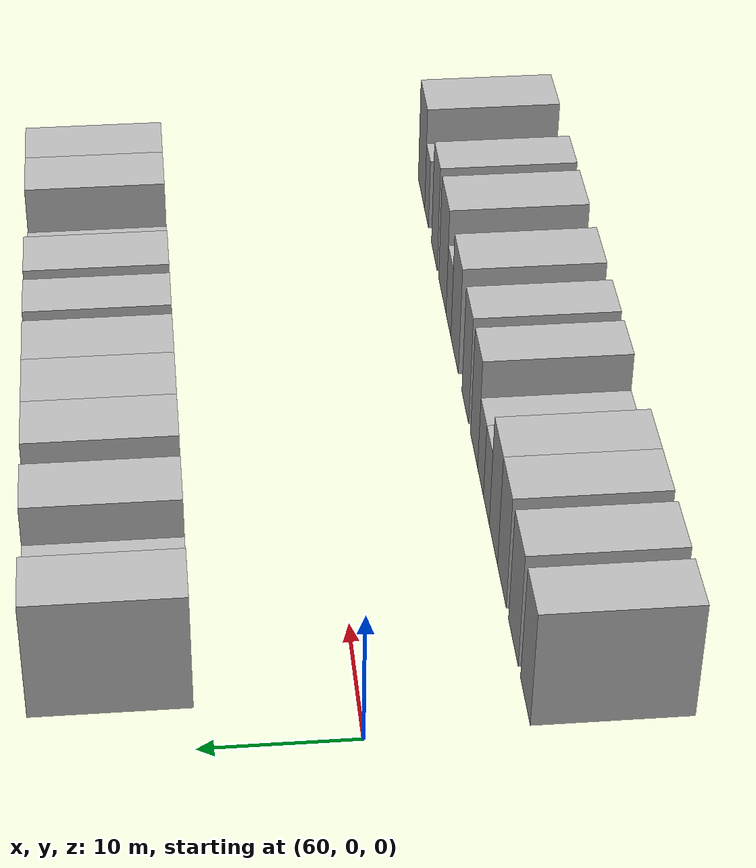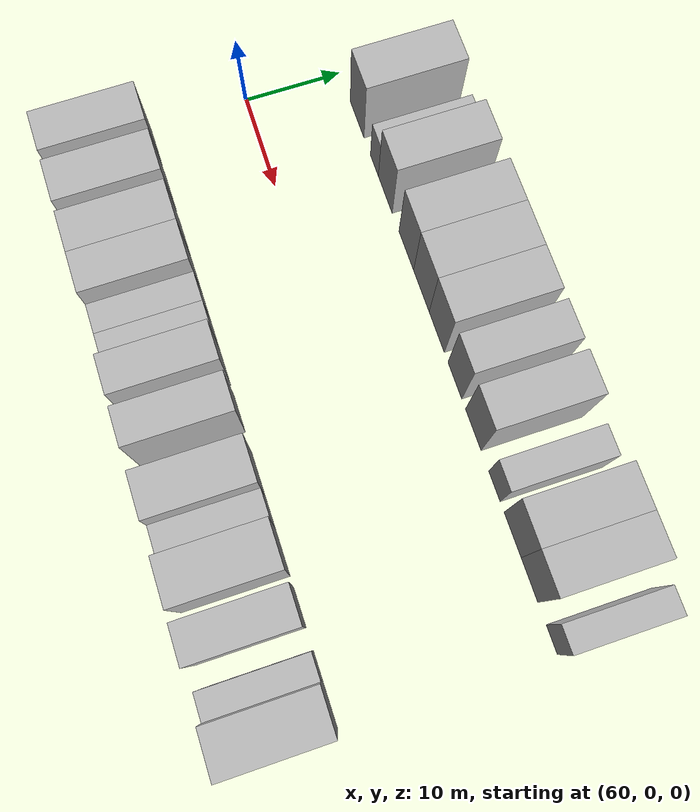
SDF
<sdf version="1.6">
 <world name="default">
  <model name="building_14">
   <static>1</static>
   <pose>65.6387 15.0000 0 0.000000 0.000000 1.570796</pose>
   <link name="link">
    <pose>0 0 4.50 0 0 0</pose>
    <collision name="collision"><geometry><box><size>10.0000 4.3270 9.0000</size></box></geometry></collision>
    <visual name="visual">
     <cast_shadows>0</cast_shadows>
     <geometry><box><size>10.0000 4.3270 9.0000</size></box></geometry>
     <material>
      <script>
       <uri>model://HANNAS_wall/materials/scripts</uri>
       <uri>model://HANNAS_wall/materials/textures</uri>
       <name>vrc/HANNAS_wall</name>
      </script>
     </material>
    </visual>
   </link>
  </model>
  <model name="building_15">
   <static>1</static>
   <pose>71.0189 15.0000 0 0.000000 0.000000 1.570796</pose>
   <link name="link">
    <pose>0 0 3.00 0 0 0</pose>
    <collision name="collision"><geometry><box><size>10.0000 2.4332 6.0000</size></box></geometry></collision>
    <visual name="visual">
     <cast_shadows>0</cast_shadows>
     <geometry><box><size>10.0000 2.4332 6.0000</size></box></geometry>
     <material>
      <script>
       <uri>model://HANNAS_wall/materials/scripts</uri>
       <uri>model://HANNAS_wall/materials/textures</uri>
       <name>vrc/HANNAS_wall</name>
      </script>
     </material>
    </visual>
   </link>
  </model>
  <model name="building_16">
   <static>1</static>
   <pose>74.3353 15.0000 0 0.000000 0.000000 1.570796</pose>
   <link name="link">
    <pose>0 0 4.50 0 0 0</pose>
    <collision name="collision"><geometry><box><size>10.0000 4.1997 9.0000</size></box></geometry></collision>
    <visual name="visual">
     <cast_shadows>0</cast_shadows>
     <geometry><box><size>10.0000 4.1997 9.0000</size></box></geometry>
     <material>
      <script>
       <uri>model://HANNAS_wall/materials/scripts</uri>
       <uri>model://HANNAS_wall/materials/textures</uri>
       <name>vrc/HANNAS_wall</name>
      </script>
     </material>
    </visual>
   </link>
  </model>
  <model name="building_17">
   <static>1</static>
   <pose>80.5745 15.0000 0 0.000000 0.000000 1.570796</pose>
   <link name="link">
    <pose>0 0 4.50 0 0 0</pose>
    <collision name="collision"><geometry><box><size>10.0000 4.2787 9.0000</size></box></geometry></collision>
    <visual name="visual">
     <cast_shadows>0</cast_shadows>
     <geometry><box><size>10.0000 4.2787 9.0000</size></box></geometry>
     <material>
      <script>
       <uri>model://HANNAS_wall/materials/scripts</uri>
       <uri>model://HANNAS_wall/materials/textures</uri>
       <name>vrc/HANNAS_wall</name>
      </script>
     </material>
    </visual>
   </link>
  </model>
  <model name="building_18">
   <static>1</static>
   <pose>84.9429 15.0000 0 0.000000 0.000000 1.570796</pose>
   <link name="link">
    <pose>0 0 4.50 0 0 0</pose>
    <collision name="collision"><geometry><box><size>10.0000 4.4583 9.0000</size></box></geometry></collision>
    <visual name="visual">
     <cast_shadows>0</cast_shadows>
     <geometry><box><size>10.0000 4.4583 9.0000</size></box></geometry>
     <material>
      <script>
       <uri>model://HANNAS_wall/materials/scripts</uri>
       <uri>model://HANNAS_wall/materials/textures</uri>
       <name>vrc/HANNAS_wall</name>
      </script>
     </material>
    </visual>
   </link>
  </model>
  <model name="building_19">
   <static>1</static>
   <pose>89.2964 15.0000 0 0.000000 0.000000 1.570796</pose>
   <link name="link">
    <pose>0 0 4.50 0 0 0</pose>
    <collision name="collision"><geometry><box><size>10.0000 4.2488 9.0000</size></box></geometry></collision>
    <visual name="visual">
     <cast_shadows>0</cast_shadows>
     <geometry><box><size>10.0000 4.2488 9.0000</size></box></geometry>
     <material>
      <script>
       <uri>model://HANNAS_wall/materials/scripts</uri>
       <uri>model://HANNAS_wall/materials/textures</uri>
       <name>vrc/HANNAS_wall</name>
      </script>
     </material>
    </visual>
   </link>
  </model>
  <model name="building_20">
   <static>1</static>
   <pose>94.2962 15.0000 0 0.000000 0.000000 1.570796</pose>
   <link name="link">
    <pose>0 0 4.50 0 0 0</pose>
    <collision name="collision"><geometry><box><size>10.0000 3.7507 9.0000</size></box></geometry></collision>
    <visual name="visual">
     <cast_shadows>0</cast_shadows>
     <geometry><box><size>10.0000 3.7507 9.0000</size></box></geometry>
     <material>
      <script>
       <uri>model://HANNAS_wall/materials/scripts</uri>
       <uri>model://HANNAS_wall/materials/textures</uri>
       <name>vrc/HANNAS_wall</name>
      </script>
     </material>
    </visual>
   </link>
  </model>
  <model name="building_21">
   <static>1</static>
   <pose>99.2326 15.0000 0 0.000000 0.000000 1.570796</pose>
   <link name="link">
    <pose>0 0 4.50 0 0 0</pose>
    <collision name="collision"><geometry><box><size>10.0000 4.1222 9.0000</size></box></geometry></collision>
    <visual name="visual">
     <cast_shadows>0</cast_shadows>
     <geometry><box><size>10.0000 4.1222 9.0000</size></box></geometry>
     <material>
      <script>
       <uri>model://HANNAS_wall/materials/scripts</uri>
       <uri>model://HANNAS_wall/materials/textures</uri>
       <name>vrc/HANNAS_wall</name>
      </script>
     </material>
    </visual>
   </link>
  </model>
  <model name="building_22">
   <static>1</static>
   <pose>104.7581 15.0000 0 0.000000 0.000000 1.570796</pose>
   <link name="link">
    <pose>0 0 3.00 0 0 0</pose>
    <collision name="collision"><geometry><box><size>10.0000 2.9286 6.0000</size></box></geometry></collision>
    <visual name="visual">
     <cast_shadows>0</cast_shadows>
     <geometry><box><size>10.0000 2.9286 6.0000</size></box></geometry>
     <material>
      <script>
       <uri>model://HANNAS_wall/materials/scripts</uri>
       <uri>model://HANNAS_wall/materials/textures</uri>
       <name>vrc/HANNAS_wall</name>
      </script>
     </material>
    </visual>
   </link>
  </model>
  <model name="building_23">
   <static>1</static>
   <pose>109.3536 15.0000 0 0.000000 0.000000 1.570796</pose>
   <link name="link">
    <pose>0 0 4.50 0 0 0</pose>
    <collision name="collision"><geometry><box><size>10.0000 4.2624 9.0000</size></box></geometry></collision>
    <visual name="visual">
     <cast_shadows>0</cast_shadows>
     <geometry><box><size>10.0000 4.2624 9.0000</size></box></geometry>
     <material>
      <script>
       <uri>model://HANNAS_wall/materials/scripts</uri>
       <uri>model://HANNAS_wall/materials/textures</uri>
       <name>vrc/HANNAS_wall</name>
      </script>
     </material>
    </visual>
   </link>
  </model>
  <model name="building_24">
   <static>1</static>
   <pose>113.5259 15.0000 0 0.000000 0.000000 1.570796</pose>
   <link name="link">
    <pose>0 0 4.50 0 0 0</pose>
    <collision name="collision"><geometry><box><size>10.0000 4.0823 9.0000</size></box></geometry></collision>
    <visual name="visual">
     <cast_shadows>0</cast_shadows>
     <geometry><box><size>10.0000 4.0823 9.0000</size></box></geometry>
     <material>
      <script>
       <uri>model://HANNAS_wall/materials/scripts</uri>
       <uri>model://HANNAS_wall/materials/textures</uri>
       <name>vrc/HANNAS_wall</name>
      </script>
     </material>
    </visual>
   </link>
  </model>
  <model name="building_25">
   <static>1</static>
   <pose>118.8828 15.0000 0 0.000000 0.000000 1.570796</pose>
   <link name="link">
    <pose>0 0 3.00 0 0 0</pose>
    <collision name="collision"><geometry><box><size>10.0000 2.6316 6.0000</size></box></geometry></collision>
    <visual name="visual">
     <cast_shadows>0</cast_shadows>
     <geometry><box><size>10.0000 2.6316 6.0000</size></box></geometry>
     <material>
      <script>
       <uri>model://HANNAS_wall/materials/scripts</uri>
       <uri>model://HANNAS_wall/materials/textures</uri>
       <name>vrc/HANNAS_wall</name>
      </script>
     </material>
    </visual>
   </link>
  </model>
  <model name="building_65">
   <static>1</static>
   <pose>62.3762 -15.0000 0 0.000000 0.000000 1.570796</pose>
   <link name="link">
    <pose>0 0 4.50 0 0 0</pose>
    <collision name="collision"><geometry><box><size>10.0000 4.0586 9.0000</size></box></geometry></collision>
    <visual name="visual">
     <cast_shadows>0</cast_shadows>
     <geometry><box><size>10.0000 4.0586 9.0000</size></box></geometry>
     <material>
      <script>
       <uri>model://HANNAS_wall/materials/scripts</uri>
       <uri>model://HANNAS_wall/materials/textures</uri>
       <name>vrc/HANNAS_wall</name>
      </script>
     </material>
    </visual>
   </link>
  </model>
  <model name="building_66">
   <static>1</static>
   <pose>67.5214 -15.0000 0 0.000000 0.000000 1.570796</pose>
   <link name="link">
    <pose>0 0 4.50 0 0 0</pose>
    <collision name="collision"><geometry><box><size>10.0000 4.2317 9.0000</size></box></geometry></collision>
    <visual name="visual">
     <cast_shadows>0</cast_shadows>
     <geometry><box><size>10.0000 4.2317 9.0000</size></box></geometry>
     <material>
      <script>
       <uri>model://HANNAS_wall/materials/scripts</uri>
       <uri>model://HANNAS_wall/materials/textures</uri>
       <name>vrc/HANNAS_wall</name>
      </script>
     </material>
    </visual>
   </link>
  </model>
  <model name="building_67">
   <static>1</static>
   <pose>72.6608 -15.0000 0 0.000000 0.000000 1.570796</pose>
   <link name="link">
    <pose>0 0 4.50 0 0 0</pose>
    <collision name="collision"><geometry><box><size>10.0000 4.0473 9.0000</size></box></geometry></collision>
    <visual name="visual">
     <cast_shadows>0</cast_shadows>
     <geometry><box><size>10.0000 4.0473 9.0000</size></box></geometry>
     <material>
      <script>
       <uri>model://HANNAS_wall/materials/scripts</uri>
       <uri>model://HANNAS_wall/materials/textures</uri>
       <name>vrc/HANNAS_wall</name>
      </script>
     </material>
    </visual>
   </link>
  </model>
  <model name="building_68">
   <static>1</static>
   <pose>76.6732 -15.0000 0 0.000000 0.000000 1.570796</pose>
   <link name="link">
    <pose>0 0 4.50 0 0 0</pose>
    <collision name="collision"><geometry><box><size>10.0000 3.9776 9.0000</size></box></geometry></collision>
    <visual name="visual">
     <cast_shadows>0</cast_shadows>
     <geometry><box><size>10.0000 3.9776 9.0000</size></box></geometry>
     <material>
      <script>
       <uri>model://HANNAS_wall/materials/scripts</uri>
       <uri>model://HANNAS_wall/materials/textures</uri>
       <name>vrc/HANNAS_wall</name>
      </script>
     </material>
    </visual>
   </link>
  </model>
  <model name="building_69">
   <static>1</static>
   <pose>80.1014 -15.0000 0 0.000000 0.000000 1.570796</pose>
   <link name="link">
    <pose>0 0 3.00 0 0 0</pose>
    <collision name="collision"><geometry><box><size>10.0000 2.8788 6.0000</size></box></geometry></collision>
    <visual name="visual">
     <cast_shadows>0</cast_shadows>
     <geometry><box><size>10.0000 2.8788 6.0000</size></box></geometry>
     <material>
      <script>
       <uri>model://HANNAS_wall/materials/scripts</uri>
       <uri>model://HANNAS_wall/materials/textures</uri>
       <name>vrc/HANNAS_wall</name>
      </script>
     </material>
    </visual>
   </link>
  </model>
  <model name="building_70">
   <static>1</static>
   <pose>82.9962 -15.0000 0 0.000000 0.000000 1.570796</pose>
   <link name="link">
    <pose>0 0 3.00 0 0 0</pose>
    <collision name="collision"><geometry><box><size>10.0000 2.9108 6.0000</size></box></geometry></collision>
    <visual name="visual">
     <cast_shadows>0</cast_shadows>
     <geometry><box><size>10.0000 2.9108 6.0000</size></box></geometry>
     <material>
      <script>
       <uri>model://HANNAS_wall/materials/scripts</uri>
       <uri>model://HANNAS_wall/materials/textures</uri>
       <name>vrc/HANNAS_wall</name>
      </script>
     </material>
    </visual>
   </link>
  </model>
  <model name="building_71">
   <static>1</static>
   <pose>86.3245 -15.0000 0 0.000000 0.000000 1.570796</pose>
   <link name="link">
    <pose>0 0 4.50 0 0 0</pose>
    <collision name="collision"><geometry><box><size>10.0000 3.7457 9.0000</size></box></geometry></collision>
    <visual name="visual">
     <cast_shadows>0</cast_shadows>
     <geometry><box><size>10.0000 3.7457 9.0000</size></box></geometry>
     <material>
      <script>
       <uri>model://HANNAS_wall/materials/scripts</uri>
       <uri>model://HANNAS_wall/materials/textures</uri>
       <name>vrc/HANNAS_wall</name>
      </script>
     </material>
    </visual>
   </link>
  </model>
  <model name="building_72">
   <static>1</static>
   <pose>91.0410 -15.0000 0 0.000000 0.000000 1.570796</pose>
   <link name="link">
    <pose>0 0 4.50 0 0 0</pose>
    <collision name="collision"><geometry><box><size>10.0000 3.6872 9.0000</size></box></geometry></collision>
    <visual name="visual">
     <cast_shadows>0</cast_shadows>
     <geometry><box><size>10.0000 3.6872 9.0000</size></box></geometry>
     <material>
      <script>
       <uri>model://HANNAS_wall/materials/scripts</uri>
       <uri>model://HANNAS_wall/materials/textures</uri>
       <name>vrc/HANNAS_wall</name>
      </script>
     </material>
    </visual>
   </link>
  </model>
  <model name="building_73">
   <static>1</static>
   <pose>97.0474 -15.0000 0 0.000000 0.000000 1.570796</pose>
   <link name="link">
    <pose>0 0 4.50 0 0 0</pose>
    <collision name="collision"><geometry><box><size>10.0000 4.3257 9.0000</size></box></geometry></collision>
    <visual name="visual">
     <cast_shadows>0</cast_shadows>
     <geometry><box><size>10.0000 4.3257 9.0000</size></box></geometry>
     <material>
      <script>
       <uri>model://HANNAS_wall/materials/scripts</uri>
       <uri>model://HANNAS_wall/materials/textures</uri>
       <name>vrc/HANNAS_wall</name>
      </script>
     </material>
    </visual>
   </link>
  </model>
  <model name="building_74">
   <static>1</static>
   <pose>100.6593 -15.0000 0 0.000000 0.000000 1.570796</pose>
   <link name="link">
    <pose>0 0 3.00 0 0 0</pose>
    <collision name="collision"><geometry><box><size>10.0000 2.8981 6.0000</size></box></geometry></collision>
    <visual name="visual">
     <cast_shadows>0</cast_shadows>
     <geometry><box><size>10.0000 2.8981 6.0000</size></box></geometry>
     <material>
      <script>
       <uri>model://HANNAS_wall/materials/scripts</uri>
       <uri>model://HANNAS_wall/materials/textures</uri>
       <name>vrc/HANNAS_wall</name>
      </script>
     </material>
    </visual>
   </link>
  </model>
  <model name="building_75">
   <static>1</static>
   <pose>104.3410 -15.0000 0 0.000000 0.000000 1.570796</pose>
   <link name="link">
    <pose>0 0 4.50 0 0 0</pose>
    <collision name="collision"><geometry><box><size>10.0000 4.4653 9.0000</size></box></geometry></collision>
    <visual name="visual">
     <cast_shadows>0</cast_shadows>
     <geometry><box><size>10.0000 4.4653 9.0000</size></box></geometry>
     <material>
      <script>
       <uri>model://HANNAS_wall/materials/scripts</uri>
       <uri>model://HANNAS_wall/materials/textures</uri>
       <name>vrc/HANNAS_wall</name>
      </script>
     </material>
    </visual>
   </link>
  </model>
  <model name="building_76">
   <static>1</static>
   <pose>109.3901 -15.0000 0 0.000000 0.000000 1.570796</pose>
   <link name="link">
    <pose>0 0 4.50 0 0 0</pose>
    <collision name="collision"><geometry><box><size>10.0000 3.6329 9.0000</size></box></geometry></collision>
    <visual name="visual">
     <cast_shadows>0</cast_shadows>
     <geometry><box><size>10.0000 3.6329 9.0000</size></box></geometry>
     <material>
      <script>
       <uri>model://HANNAS_wall/materials/scripts</uri>
       <uri>model://HANNAS_wall/materials/textures</uri>
       <name>vrc/HANNAS_wall</name>
      </script>
     </material>
    </visual>
   </link>
  </model>
  <model name="building_77">
   <static>1</static>
   <pose>114.4494 -15.0000 0 0.000000 0.000000 1.570796</pose>
   <link name="link">
    <pose>0 0 3.00 0 0 0</pose>
    <collision name="collision"><geometry><box><size>10.0000 2.4856 6.0000</size></box></geometry></collision>
    <visual name="visual">
     <cast_shadows>0</cast_shadows>
     <geometry><box><size>10.0000 2.4856 6.0000</size></box></geometry>
     <material>
      <script>
       <uri>model://HANNAS_wall/materials/scripts</uri>
       <uri>model://HANNAS_wall/materials/textures</uri>
       <name>vrc/HANNAS_wall</name>
      </script>
     </material>
    </visual>
   </link>
  </model>
  <model name="building_78">
   <static>1</static>
   <pose>117.8683 -15.0000 0 0.000000 0.000000 1.570796</pose>
   <link name="link">
    <pose>0 0 4.50 0 0 0</pose>
    <collision name="collision"><geometry><box><size>10.0000 4.3523 9.0000</size></box></geometry></collision>
    <visual name="visual">
     <cast_shadows>0</cast_shadows>
     <geometry><box><size>10.0000 4.3523 9.0000</size></box></geometry>
     <material>
      <script>
       <uri>model://HANNAS_wall/materials/scripts</uri>
       <uri>model://HANNAS_wall/materials/textures</uri>
       <name>vrc/HANNAS_wall</name>
      </script>
     </material>
    </visual>
   </link>
  </model>
 </world>
</sdf>
